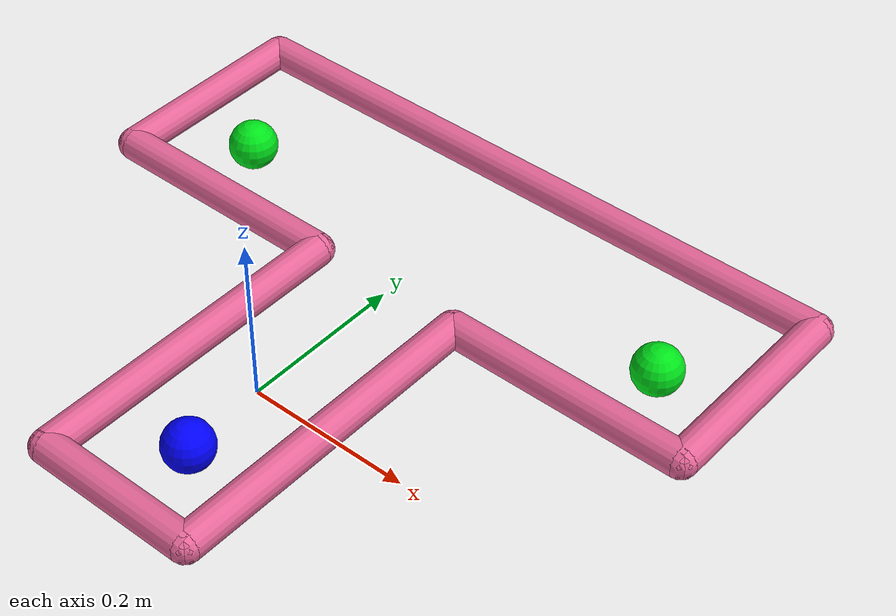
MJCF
<mujoco model="twod_point">
    <compiler inertiafromgeom="true" angle="radian" coordinate="local" />
    <option timestep="0.01" gravity="0 0 0" iterations="20" integrator="Euler" />
    <default>
        <joint limited="false" damping="1" />
        <geom contype="2" conaffinity="1" condim="1" friction=".5 .1 .1" density="1000" margin="0.002" />
    </default>

    <worldbody>
        <light directional="true" cutoff="100" exponent="1" diffuse="1 1 1" specular=".1 .1 .1" pos="0 0 1.3" dir="-0 0 -1.3" />
        <!-- Pointmass -->
        <body name="particle" pos="0. -0.1 0">
            <geom name="particle_geom" type="sphere" size="0.03" rgba="0.0 0.0 1.0 1" contype="1"/>
            <site name="particle_site" pos="0 0 0" size="0.01" />
            <joint name="ball_x" type="slide" pos="0 0 0" axis="1 0 0" />
            <joint name="ball_y" type="slide" pos="0 0 0" axis="0 1 0" />
        </body>

        <!-- Arena -->
        <geom conaffinity="1" fromto="-.1 -.2 .01 .1 -.2 .01" name="sideS" rgba="0.9 0.4 0.6 1" size=".02" type="capsule"/>

        <geom conaffinity="1" fromto=" .1 -.2 .01 .1  .2 .01" name="sideE" rgba="0.9 0.4 0.6 1" size=".02" type="capsule"/>
        <geom conaffinity="1" fromto=" -.1 -.2 .01 -.1  .2 .01" name="sideW" rgba="0.9 0.4 0.6 1" size=".02" type="capsule"/>

        <geom conaffinity="1" fromto=" .1 .2 .01 .4  .2 .01" name="sideEbottom" rgba="0.9 0.4 0.6 1" size=".02" type="capsule"/>
        <geom conaffinity="1" fromto=" -.1 .2 .01 -.4  .2 .01" name="sideWbottom" rgba="0.9 0.4 0.6 1" size=".02" type="capsule"/>

        <geom conaffinity="1" fromto=" .4 .2 .01 .4  .45 .01" name="sideEside" rgba="0.9 0.4 0.6 1" size=".02" type="capsule"/>
        <geom conaffinity="1" fromto=" -.4 .2 .01 -.4  .45 .01" name="sideWside" rgba="0.9 0.4 0.6 1" size=".02" type="capsule"/>

        <geom conaffinity="1" fromto="-.4  .45 .01 .4  .45 .01" name="sideN" rgba="0.9 0.4 0.6 1" size=".02" type="capsule"/>

        <!-- Target -->
        <body name="targetl" pos="-0.3 0.3 0">
            <geom conaffinity="2" name="target_geoml" type="sphere" size="0.03" rgba="0 0.9 0.1 1"/>
        </body>
        <body name="targetr" pos="0.3 0.3 0">
            <geom conaffinity="2" name="target_geomr" type="sphere" size="0.03" rgba="0 0.9 0.1 1"/>
        </body>

    </worldbody>

    <actuator>
        <motor joint="ball_x" ctrlrange="-1 1" ctrllimited="true"/>
        <motor joint="ball_y" ctrlrange="-1 1" ctrllimited="true"/>
    </actuator>
</mujoco>
